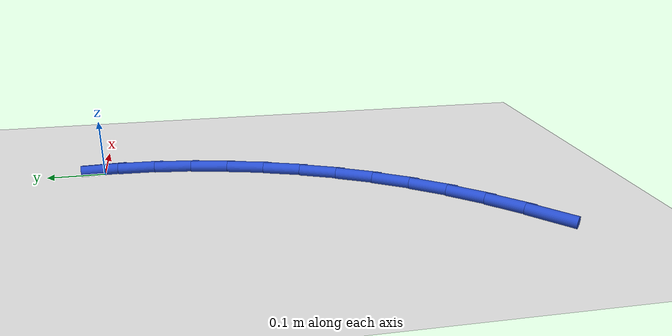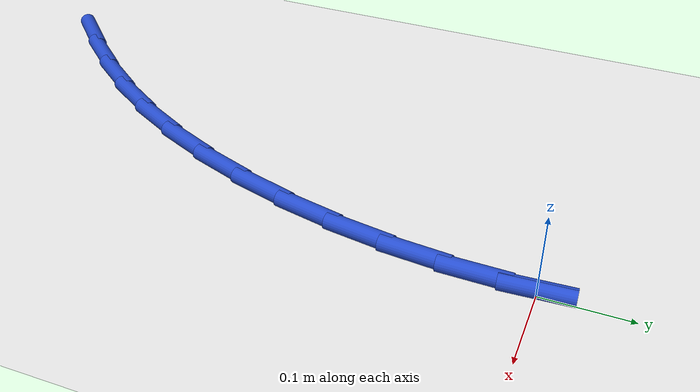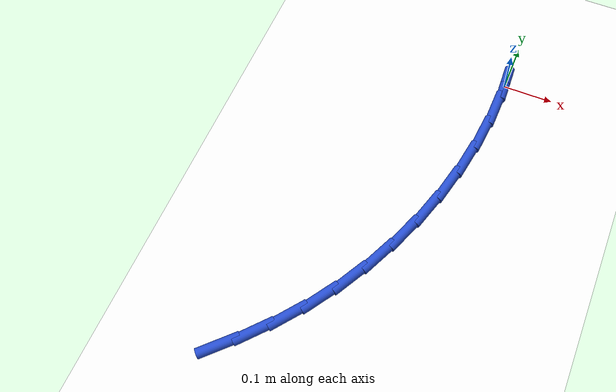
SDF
<sdf version="1.6">
 <world name="default">
  <model name="ground_plane">
   <static>1</static>
   <link name="link">
    <collision name="collision">
     <geometry><plane><normal>0 0 1</normal><size>100 100</size></plane></geometry>
     <surface><friction><ode><mu>100</mu><mu2>50</mu2></ode></friction></surface>
    </collision>
    <visual name="visual">
     <cast_shadows>0</cast_shadows>
     <geometry><plane><normal>0 0 1</normal><size>100 100</size></plane></geometry>
     <material>
      <script><uri>file://media/materials/scripts/gazebo.material</uri><name>Gazebo/WhiteGlow</name></script>
     </material>
    </visual>
   </link>
  </model>
  <model name="line">
   <link name="link_0">
    <pose>-3.469446951953614e-17 4.163336342344337e-17 0.01 0 1.57 -1.5173254560084088</pose>
    <collision name="collision">
     <geometry><cylinder><radius>0.01</radius><length>0.08</length></cylinder></geometry>
    </collision>
    <visual name="visual">
     <material>
      <script><name>Gazebo/Blue</name><uri>file://media/materials/scripts/gazebo.material</uri></script>
     </material>
     <geometry><cylinder><radius>0.01</radius><length>0.08</length></cylinder></geometry>
    </visual>
   </link>
   <link name="link_98">
    <pose>-0.2997441031225041 -0.7002999751633963 0.01 0 1.57 0.7692479339696361</pose>
    <collision name="collision">
     <geometry><cylinder><radius>0.01</radius><length>0.08</length></cylinder></geometry>
    </collision>
    <visual name="visual">
     <material>
      <script><name>Gazebo/Blue</name><uri>file://media/materials/scripts/gazebo.material</uri></script>
     </material>
     <geometry><cylinder><radius>0.01</radius><length>0.08</length></cylinder></geometry>
    </visual>
   </link>
   <link name="link_99">
    <pose>-0.25336256038513766 -0.6553928928612577 0.01 0 1.57 0.8332496826704472</pose>
    <collision name="collision">
     <geometry><cylinder><radius>0.01</radius><length>0.08</length></cylinder></geometry>
    </collision>
    <visual name="visual">
     <material>
      <script><name>Gazebo/Blue</name><uri>file://media/materials/scripts/gazebo.material</uri></script>
     </material>
     <geometry><cylinder><radius>0.01</radius><length>0.08</length></cylinder></geometry>
    </visual>
   </link>
   <link name="link_100">
    <pose>-0.21005177731600855 -0.6077253319682046 0.01 0 1.57 0.9057808521696588</pose>
    <collision name="collision">
     <geometry><cylinder><radius>0.01</radius><length>0.08</length></cylinder></geometry>
    </collision>
    <visual name="visual">
     <material>
      <script><name>Gazebo/Blue</name><uri>file://media/materials/scripts/gazebo.material</uri></script>
     </material>
     <geometry><cylinder><radius>0.01</radius><length>0.08</length></cylinder></geometry>
    </visual>
   </link>
   <link name="link_101">
    <pose>-0.17023003047442914 -0.5569434851245737 0.01 0 1.57 0.9853506095159176</pose>
    <collision name="collision">
     <geometry><cylinder><radius>0.01</radius><length>0.08</length></cylinder></geometry>
    </collision>
    <visual name="visual">
     <material>
      <script><name>Gazebo/Blue</name><uri>file://media/materials/scripts/gazebo.material</uri></script>
     </material>
     <geometry><cylinder><radius>0.01</radius><length>0.08</length></cylinder></geometry>
    </visual>
   </link>
   <link name="link_102">
    <pose>-0.13429646457658623 -0.5027433823354867 0.01 0 1.57 1.0641822722293546</pose>
    <collision name="collision">
     <geometry><cylinder><radius>0.01</radius><length>0.08</length></cylinder></geometry>
    </collision>
    <visual name="visual">
     <material>
      <script><name>Gazebo/Blue</name><uri>file://media/materials/scripts/gazebo.material</uri></script>
     </material>
     <geometry><cylinder><radius>0.01</radius><length>0.08</length></cylinder></geometry>
    </visual>
   </link>
   <link name="link_103">
    <pose>-0.10244735702622403 -0.4453495114336045 0.01 0 1.57 1.1386975738064724</pose>
    <collision name="collision">
     <geometry><cylinder><radius>0.01</radius><length>0.08</length></cylinder></geometry>
    </collision>
    <visual name="visual">
     <material>
      <script><name>Gazebo/Blue</name><uri>file://media/materials/scripts/gazebo.material</uri></script>
     </material>
     <geometry><cylinder><radius>0.01</radius><length>0.08</length></cylinder></geometry>
    </visual>
   </link>
   <link name="link_104">
    <pose>-0.07475682122979638 -0.3853045905265006 0.01 0 1.57 1.2098592599638962</pose>
    <collision name="collision">
     <geometry><cylinder><radius>0.01</radius><length>0.08</length></cylinder></geometry>
    </collision>
    <visual name="visual">
     <material>
      <script><name>Gazebo/Blue</name><uri>file://media/materials/scripts/gazebo.material</uri></script>
     </material>
     <geometry><cylinder><radius>0.01</radius><length>0.08</length></cylinder></geometry>
    </visual>
   </link>
   <link name="link_105">
    <pose>-0.051297292664377755 -0.3231557086324935 0.01 0 1.57 1.2787008275666998</pose>
    <collision name="collision">
     <geometry><cylinder><radius>0.01</radius><length>0.08</length></cylinder></geometry>
    </collision>
    <visual name="visual">
     <material>
      <script><name>Gazebo/Blue</name><uri>file://media/materials/scripts/gazebo.material</uri></script>
     </material>
     <geometry><cylinder><radius>0.01</radius><length>0.08</length></cylinder></geometry>
    </visual>
   </link>
   <link name="link_106">
    <pose>-0.03214120680704147 -0.2594499547698989 0.01 0 1.57 1.3462601378282226</pose>
    <collision name="collision">
     <geometry><cylinder><radius>0.01</radius><length>0.08</length></cylinder></geometry>
    </collision>
    <visual name="visual">
     <material>
      <script><name>Gazebo/Blue</name><uri>file://media/materials/scripts/gazebo.material</uri></script>
     </material>
     <geometry><cylinder><radius>0.01</radius><length>0.08</length></cylinder></geometry>
    </visual>
   </link>
   <link name="link_107">
    <pose>-0.017360999134861846 -0.1947344179570357 0.01 0 1.57 1.4135868361713935</pose>
    <collision name="collision">
     <geometry><cylinder><radius>0.01</radius><length>0.08</length></cylinder></geometry>
    </collision>
    <visual name="visual">
     <material>
      <script><name>Gazebo/Blue</name><uri>file://media/materials/scripts/gazebo.material</uri></script>
     </material>
     <geometry><cylinder><radius>0.01</radius><length>0.08</length></cylinder></geometry>
    </visual>
   </link>
   <link name="link_108">
    <pose>-0.007029105124912383 -0.1295561872122194 0.01 0 1.57 1.4817590091923987</pose>
    <collision name="collision">
     <geometry><cylinder><radius>0.01</radius><length>0.08</length></cylinder></geometry>
    </collision>
    <visual name="visual">
     <material>
      <script><name>Gazebo/Blue</name><uri>file://media/materials/scripts/gazebo.material</uri></script>
     </material>
     <geometry><cylinder><radius>0.01</radius><length>0.08</length></cylinder></geometry>
    </visual>
   </link>
   <link name="link_109">
    <pose>-0.0012179602542671981 -0.06446235155376887 0.01 0 1.57 1.5519044414782437</pose>
    <collision name="collision">
     <geometry><cylinder><radius>0.01</radius><length>0.08</length></cylinder></geometry>
    </collision>
    <visual name="visual">
     <material>
      <script><name>Gazebo/Blue</name><uri>file://media/materials/scripts/gazebo.material</uri></script>
     </material>
     <geometry><cylinder><radius>0.01</radius><length>0.08</length></cylinder></geometry>
    </visual>
   </link>
   <link name="link_110">
    <pose>-1.734723475976807e-17 2.914335439641036e-16 0.01 0 1.57 -1.5163707678269838</pose>
    <collision name="collision">
     <geometry><cylinder><radius>0.01</radius><length>0.08</length></cylinder></geometry>
    </collision>
    <visual name="visual">
     <material>
      <script><name>Gazebo/Blue</name><uri>file://media/materials/scripts/gazebo.material</uri></script>
     </material>
     <geometry><cylinder><radius>0.01</radius><length>0.08</length></cylinder></geometry>
    </visual>
   </link>
  </model>
 </world>
</sdf>
